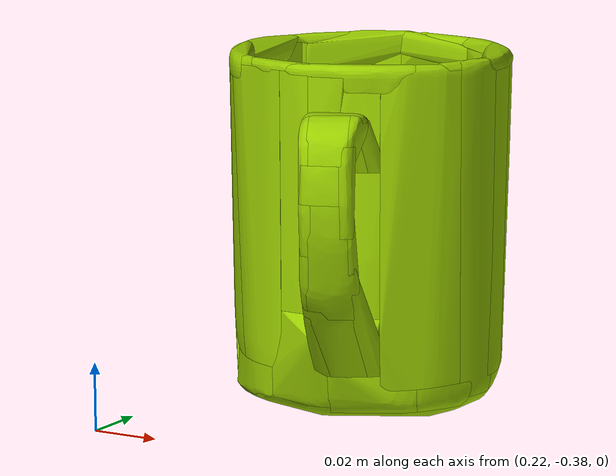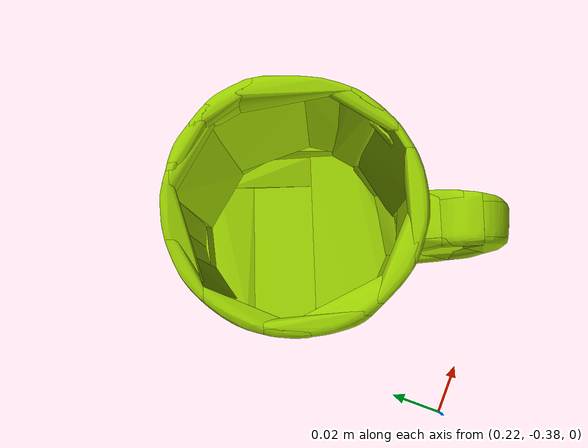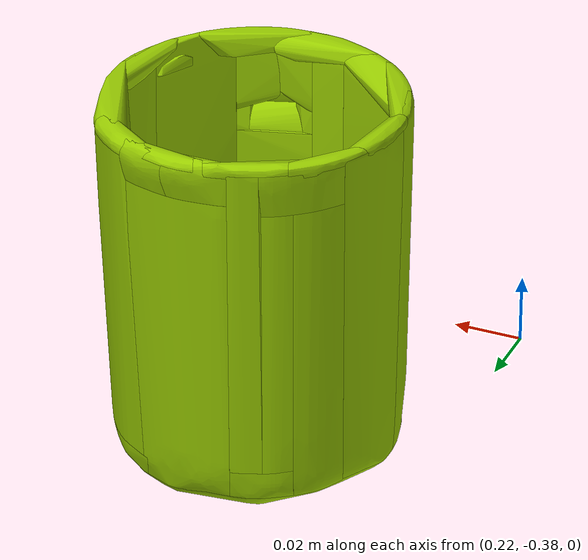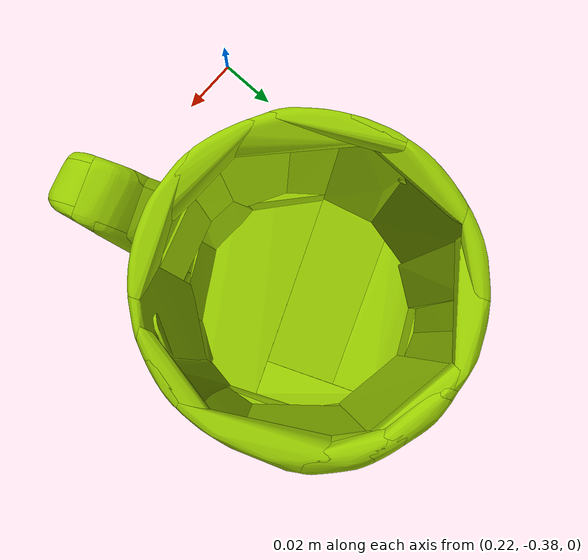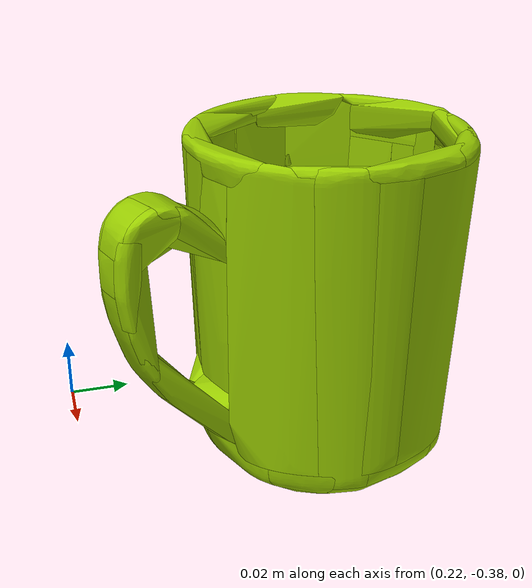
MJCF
<mujoco model="039_mug_1">
  <asset>
    <mesh name="039_mug_1_mesh" file="/home/yuan/codegen/codegen/datagen_clean/assets/objects/039_mug/1/039_mug_1.stl" scale="1 1 1" />
    <mesh name="039_mug_1_part_0" file="/home/yuan/codegen/codegen/datagen_clean/assets/objects/039_mug/1/decomposed/039_mug_1_decomposed_0.stl" scale="1 1 1" />
    <mesh name="039_mug_1_part_1" file="/home/yuan/codegen/codegen/datagen_clean/assets/objects/039_mug/1/decomposed/039_mug_1_decomposed_1.stl" scale="1 1 1" />
    <mesh name="039_mug_1_part_2" file="/home/yuan/codegen/codegen/datagen_clean/assets/objects/039_mug/1/decomposed/039_mug_1_decomposed_2.stl" scale="1 1 1" />
    <mesh name="039_mug_1_part_3" file="/home/yuan/codegen/codegen/datagen_clean/assets/objects/039_mug/1/decomposed/039_mug_1_decomposed_3.stl" scale="1 1 1" />
    <mesh name="039_mug_1_part_4" file="/home/yuan/codegen/codegen/datagen_clean/assets/objects/039_mug/1/decomposed/039_mug_1_decomposed_4.stl" scale="1 1 1" />
    <mesh name="039_mug_1_part_5" file="/home/yuan/codegen/codegen/datagen_clean/assets/objects/039_mug/1/decomposed/039_mug_1_decomposed_5.stl" scale="1 1 1" />
    <mesh name="039_mug_1_part_6" file="/home/yuan/codegen/codegen/datagen_clean/assets/objects/039_mug/1/decomposed/039_mug_1_decomposed_6.stl" scale="1 1 1" />
    <mesh name="039_mug_1_part_7" file="/home/yuan/codegen/codegen/datagen_clean/assets/objects/039_mug/1/decomposed/039_mug_1_decomposed_7.stl" scale="1 1 1" />
    <mesh name="039_mug_1_part_8" file="/home/yuan/codegen/codegen/datagen_clean/assets/objects/039_mug/1/decomposed/039_mug_1_decomposed_8.stl" scale="1 1 1" />
    <mesh name="039_mug_1_part_9" file="/home/yuan/codegen/codegen/datagen_clean/assets/objects/039_mug/1/decomposed/039_mug_1_decomposed_9.stl" scale="1 1 1" />
    <mesh name="039_mug_1_part_10" file="/home/yuan/codegen/codegen/datagen_clean/assets/objects/039_mug/1/decomposed/039_mug_1_decomposed_10.stl" scale="1 1 1" />
    <mesh name="039_mug_1_part_11" file="/home/yuan/codegen/codegen/datagen_clean/assets/objects/039_mug/1/decomposed/039_mug_1_decomposed_11.stl" scale="1 1 1" />
    <mesh name="039_mug_1_part_12" file="/home/yuan/codegen/codegen/datagen_clean/assets/objects/039_mug/1/decomposed/039_mug_1_decomposed_12.stl" scale="1 1 1" />
    <mesh name="039_mug_1_part_13" file="/home/yuan/codegen/codegen/datagen_clean/assets/objects/039_mug/1/decomposed/039_mug_1_decomposed_13.stl" scale="1 1 1" />
    <mesh name="039_mug_1_part_14" file="/home/yuan/codegen/codegen/datagen_clean/assets/objects/039_mug/1/decomposed/039_mug_1_decomposed_14.stl" scale="1 1 1" />
    <mesh name="039_mug_1_part_15" file="/home/yuan/codegen/codegen/datagen_clean/assets/objects/039_mug/1/decomposed/039_mug_1_decomposed_15.stl" scale="1 1 1" />
    <mesh name="039_mug_1_part_16" file="/home/yuan/codegen/codegen/datagen_clean/assets/objects/039_mug/1/decomposed/039_mug_1_decomposed_16.stl" scale="1 1 1" />
    <mesh name="039_mug_1_part_17" file="/home/yuan/codegen/codegen/datagen_clean/assets/objects/039_mug/1/decomposed/039_mug_1_decomposed_17.stl" scale="1 1 1" />
    <mesh name="039_mug_1_part_18" file="/home/yuan/codegen/codegen/datagen_clean/assets/objects/039_mug/1/decomposed/039_mug_1_decomposed_18.stl" scale="1 1 1" />
    <mesh name="039_mug_1_part_19" file="/home/yuan/codegen/codegen/datagen_clean/assets/objects/039_mug/1/decomposed/039_mug_1_decomposed_19.stl" scale="1 1 1" />
    <mesh name="039_mug_1_part_20" file="/home/yuan/codegen/codegen/datagen_clean/assets/objects/039_mug/1/decomposed/039_mug_1_decomposed_20.stl" scale="1 1 1" />
    <mesh name="039_mug_1_part_21" file="/home/yuan/codegen/codegen/datagen_clean/assets/objects/039_mug/1/decomposed/039_mug_1_decomposed_21.stl" scale="1 1 1" />
    <mesh name="039_mug_1_part_22" file="/home/yuan/codegen/codegen/datagen_clean/assets/objects/039_mug/1/decomposed/039_mug_1_decomposed_22.stl" scale="1 1 1" />
    <mesh name="039_mug_1_part_23" file="/home/yuan/codegen/codegen/datagen_clean/assets/objects/039_mug/1/decomposed/039_mug_1_decomposed_23.stl" scale="1 1 1" />
    <mesh name="039_mug_1_part_24" file="/home/yuan/codegen/codegen/datagen_clean/assets/objects/039_mug/1/decomposed/039_mug_1_decomposed_24.stl" scale="1 1 1" />
    <mesh name="039_mug_1_part_25" file="/home/yuan/codegen/codegen/datagen_clean/assets/objects/039_mug/1/decomposed/039_mug_1_decomposed_25.stl" scale="1 1 1" />
    <mesh name="039_mug_1_part_26" file="/home/yuan/codegen/codegen/datagen_clean/assets/objects/039_mug/1/decomposed/039_mug_1_decomposed_26.stl" scale="1 1 1" />
    <mesh name="039_mug_1_part_27" file="/home/yuan/codegen/codegen/datagen_clean/assets/objects/039_mug/1/decomposed/039_mug_1_decomposed_27.stl" scale="1 1 1" />
    <mesh name="039_mug_1_part_28" file="/home/yuan/codegen/codegen/datagen_clean/assets/objects/039_mug/1/decomposed/039_mug_1_decomposed_28.stl" scale="1 1 1" />
    <mesh name="039_mug_1_part_29" file="/home/yuan/codegen/codegen/datagen_clean/assets/objects/039_mug/1/decomposed/039_mug_1_decomposed_29.stl" scale="1 1 1" />
    <mesh name="039_mug_1_part_30" file="/home/yuan/codegen/codegen/datagen_clean/assets/objects/039_mug/1/decomposed/039_mug_1_decomposed_30.stl" scale="1 1 1" />
    <mesh name="039_mug_1_part_31" file="/home/yuan/codegen/codegen/datagen_clean/assets/objects/039_mug/1/decomposed/039_mug_1_decomposed_31.stl" scale="1 1 1" />
    <mesh name="039_mug_1_part_32" file="/home/yuan/codegen/codegen/datagen_clean/assets/objects/039_mug/1/decomposed/039_mug_1_decomposed_32.stl" scale="1 1 1" />
    <mesh name="039_mug_1_part_33" file="/home/yuan/codegen/codegen/datagen_clean/assets/objects/039_mug/1/decomposed/039_mug_1_decomposed_33.stl" scale="1 1 1" />
    <mesh name="039_mug_1_part_34" file="/home/yuan/codegen/codegen/datagen_clean/assets/objects/039_mug/1/decomposed/039_mug_1_decomposed_34.stl" scale="1 1 1" />
    <mesh name="039_mug_1_part_35" file="/home/yuan/codegen/codegen/datagen_clean/assets/objects/039_mug/1/decomposed/039_mug_1_decomposed_35.stl" scale="1 1 1" />
    <mesh name="039_mug_1_part_36" file="/home/yuan/codegen/codegen/datagen_clean/assets/objects/039_mug/1/decomposed/039_mug_1_decomposed_36.stl" scale="1 1 1" />
    <mesh name="039_mug_1_part_37" file="/home/yuan/codegen/codegen/datagen_clean/assets/objects/039_mug/1/decomposed/039_mug_1_decomposed_37.stl" scale="1 1 1" />
    <mesh name="039_mug_1_part_38" file="/home/yuan/codegen/codegen/datagen_clean/assets/objects/039_mug/1/decomposed/039_mug_1_decomposed_38.stl" scale="1 1 1" />
    <mesh name="039_mug_1_part_39" file="/home/yuan/codegen/codegen/datagen_clean/assets/objects/039_mug/1/decomposed/039_mug_1_decomposed_39.stl" scale="1 1 1" />
    <mesh name="039_mug_1_part_40" file="/home/yuan/codegen/codegen/datagen_clean/assets/objects/039_mug/1/decomposed/039_mug_1_decomposed_40.stl" scale="1 1 1" />
    <mesh name="039_mug_1_part_41" file="/home/yuan/codegen/codegen/datagen_clean/assets/objects/039_mug/1/decomposed/039_mug_1_decomposed_41.stl" scale="1 1 1" />
    <mesh name="039_mug_1_part_42" file="/home/yuan/codegen/codegen/datagen_clean/assets/objects/039_mug/1/decomposed/039_mug_1_decomposed_42.stl" scale="1 1 1" />
    <mesh name="039_mug_1_part_43" file="/home/yuan/codegen/codegen/datagen_clean/assets/objects/039_mug/1/decomposed/039_mug_1_decomposed_43.stl" scale="1 1 1" />
    <mesh name="039_mug_1_part_44" file="/home/yuan/codegen/codegen/datagen_clean/assets/objects/039_mug/1/decomposed/039_mug_1_decomposed_44.stl" scale="1 1 1" />
    <mesh name="039_mug_1_part_45" file="/home/yuan/codegen/codegen/datagen_clean/assets/objects/039_mug/1/decomposed/039_mug_1_decomposed_45.stl" scale="1 1 1" />
    <mesh name="039_mug_1_part_46" file="/home/yuan/codegen/codegen/datagen_clean/assets/objects/039_mug/1/decomposed/039_mug_1_decomposed_46.stl" scale="1 1 1" />
    <mesh name="039_mug_1_part_47" file="/home/yuan/codegen/codegen/datagen_clean/assets/objects/039_mug/1/decomposed/039_mug_1_decomposed_47.stl" scale="1 1 1" />
    <mesh name="039_mug_1_part_48" file="/home/yuan/codegen/codegen/datagen_clean/assets/objects/039_mug/1/decomposed/039_mug_1_decomposed_48.stl" scale="1 1 1" />
    <mesh name="039_mug_1_part_49" file="/home/yuan/codegen/codegen/datagen_clean/assets/objects/039_mug/1/decomposed/039_mug_1_decomposed_49.stl" scale="1 1 1" />
    <mesh name="039_mug_1_part_50" file="/home/yuan/codegen/codegen/datagen_clean/assets/objects/039_mug/1/decomposed/039_mug_1_decomposed_50.stl" scale="1 1 1" />
    <mesh name="039_mug_1_part_51" file="/home/yuan/codegen/codegen/datagen_clean/assets/objects/039_mug/1/decomposed/039_mug_1_decomposed_51.stl" scale="1 1 1" />
    <mesh name="039_mug_1_part_52" file="/home/yuan/codegen/codegen/datagen_clean/assets/objects/039_mug/1/decomposed/039_mug_1_decomposed_52.stl" scale="1 1 1" />
    <mesh name="039_mug_1_part_53" file="/home/yuan/codegen/codegen/datagen_clean/assets/objects/039_mug/1/decomposed/039_mug_1_decomposed_53.stl" scale="1 1 1" />
    <mesh name="039_mug_1_part_54" file="/home/yuan/codegen/codegen/datagen_clean/assets/objects/039_mug/1/decomposed/039_mug_1_decomposed_54.stl" scale="1 1 1" />
    <mesh name="039_mug_1_part_55" file="/home/yuan/codegen/codegen/datagen_clean/assets/objects/039_mug/1/decomposed/039_mug_1_decomposed_55.stl" scale="1 1 1" />
    <mesh name="039_mug_1_part_56" file="/home/yuan/codegen/codegen/datagen_clean/assets/objects/039_mug/1/decomposed/039_mug_1_decomposed_56.stl" scale="1 1 1" />
    <mesh name="039_mug_1_part_57" file="/home/yuan/codegen/codegen/datagen_clean/assets/objects/039_mug/1/decomposed/039_mug_1_decomposed_57.stl" scale="1 1 1" />
    <mesh name="039_mug_1_part_58" file="/home/yuan/codegen/codegen/datagen_clean/assets/objects/039_mug/1/decomposed/039_mug_1_decomposed_58.stl" scale="1 1 1" />
    <mesh name="039_mug_1_part_59" file="/home/yuan/codegen/codegen/datagen_clean/assets/objects/039_mug/1/decomposed/039_mug_1_decomposed_59.stl" scale="1 1 1" />
    <mesh name="039_mug_1_part_60" file="/home/yuan/codegen/codegen/datagen_clean/assets/objects/039_mug/1/decomposed/039_mug_1_decomposed_60.stl" scale="1 1 1" />
    <mesh name="039_mug_1_part_61" file="/home/yuan/codegen/codegen/datagen_clean/assets/objects/039_mug/1/decomposed/039_mug_1_decomposed_61.stl" scale="1 1 1" />
    <mesh name="039_mug_1_part_62" file="/home/yuan/codegen/codegen/datagen_clean/assets/objects/039_mug/1/decomposed/039_mug_1_decomposed_62.stl" scale="1 1 1" />
    <mesh name="039_mug_1_part_63" file="/home/yuan/codegen/codegen/datagen_clean/assets/objects/039_mug/1/decomposed/039_mug_1_decomposed_63.stl" scale="1 1 1" />
  </asset>
  <worldbody>
    <body name="039_mug_1" pos="0.27354347 -0.31641611 0.0" quat="0.55556990016481 0.0 0.0 0.8314701551588386">
      <freejoint name="039_mug_1_freejoint" /><geom name="039_mug_1_geom_0" type="mesh" mesh="039_mug_1_part_0" friction="10 5 5" condim="6" rgba="0.6 0.8 0.0 1" density="1000" />
      <geom name="039_mug_1_geom_1" type="mesh" mesh="039_mug_1_part_1" friction="10 5 5" condim="6" rgba="0.6 0.8 0.0 1" density="1000" />
      <geom name="039_mug_1_geom_2" type="mesh" mesh="039_mug_1_part_2" friction="10 5 5" condim="6" rgba="0.6 0.8 0.0 1" density="1000" />
      <geom name="039_mug_1_geom_3" type="mesh" mesh="039_mug_1_part_3" friction="10 5 5" condim="6" rgba="0.6 0.8 0.0 1" density="1000" />
      <geom name="039_mug_1_geom_4" type="mesh" mesh="039_mug_1_part_4" friction="10 5 5" condim="6" rgba="0.6 0.8 0.0 1" density="1000" />
      <geom name="039_mug_1_geom_5" type="mesh" mesh="039_mug_1_part_5" friction="10 5 5" condim="6" rgba="0.6 0.8 0.0 1" density="1000" />
      <geom name="039_mug_1_geom_6" type="mesh" mesh="039_mug_1_part_6" friction="10 5 5" condim="6" rgba="0.6 0.8 0.0 1" density="1000" />
      <geom name="039_mug_1_geom_7" type="mesh" mesh="039_mug_1_part_7" friction="10 5 5" condim="6" rgba="0.6 0.8 0.0 1" density="1000" />
      <geom name="039_mug_1_geom_8" type="mesh" mesh="039_mug_1_part_8" friction="10 5 5" condim="6" rgba="0.6 0.8 0.0 1" density="1000" />
      <geom name="039_mug_1_geom_9" type="mesh" mesh="039_mug_1_part_9" friction="10 5 5" condim="6" rgba="0.6 0.8 0.0 1" density="1000" />
      <geom name="039_mug_1_geom_10" type="mesh" mesh="039_mug_1_part_10" friction="10 5 5" condim="6" rgba="0.6 0.8 0.0 1" density="1000" />
      <geom name="039_mug_1_geom_11" type="mesh" mesh="039_mug_1_part_11" friction="10 5 5" condim="6" rgba="0.6 0.8 0.0 1" density="1000" />
      <geom name="039_mug_1_geom_12" type="mesh" mesh="039_mug_1_part_12" friction="10 5 5" condim="6" rgba="0.6 0.8 0.0 1" density="1000" />
      <geom name="039_mug_1_geom_13" type="mesh" mesh="039_mug_1_part_13" friction="10 5 5" condim="6" rgba="0.6 0.8 0.0 1" density="1000" />
      <geom name="039_mug_1_geom_14" type="mesh" mesh="039_mug_1_part_14" friction="10 5 5" condim="6" rgba="0.6 0.8 0.0 1" density="1000" />
      <geom name="039_mug_1_geom_15" type="mesh" mesh="039_mug_1_part_15" friction="10 5 5" condim="6" rgba="0.6 0.8 0.0 1" density="1000" />
      <geom name="039_mug_1_geom_16" type="mesh" mesh="039_mug_1_part_16" friction="10 5 5" condim="6" rgba="0.6 0.8 0.0 1" density="1000" />
      <geom name="039_mug_1_geom_17" type="mesh" mesh="039_mug_1_part_17" friction="10 5 5" condim="6" rgba="0.6 0.8 0.0 1" density="1000" />
      <geom name="039_mug_1_geom_18" type="mesh" mesh="039_mug_1_part_18" friction="10 5 5" condim="6" rgba="0.6 0.8 0.0 1" density="1000" />
      <geom name="039_mug_1_geom_19" type="mesh" mesh="039_mug_1_part_19" friction="10 5 5" condim="6" rgba="0.6 0.8 0.0 1" density="1000" />
      <geom name="039_mug_1_geom_20" type="mesh" mesh="039_mug_1_part_20" friction="10 5 5" condim="6" rgba="0.6 0.8 0.0 1" density="1000" />
      <geom name="039_mug_1_geom_21" type="mesh" mesh="039_mug_1_part_21" friction="10 5 5" condim="6" rgba="0.6 0.8 0.0 1" density="1000" />
      <geom name="039_mug_1_geom_22" type="mesh" mesh="039_mug_1_part_22" friction="10 5 5" condim="6" rgba="0.6 0.8 0.0 1" density="1000" />
      <geom name="039_mug_1_geom_23" type="mesh" mesh="039_mug_1_part_23" friction="10 5 5" condim="6" rgba="0.6 0.8 0.0 1" density="1000" />
      <geom name="039_mug_1_geom_24" type="mesh" mesh="039_mug_1_part_24" friction="10 5 5" condim="6" rgba="0.6 0.8 0.0 1" density="1000" />
      <geom name="039_mug_1_geom_25" type="mesh" mesh="039_mug_1_part_25" friction="10 5 5" condim="6" rgba="0.6 0.8 0.0 1" density="1000" />
      <geom name="039_mug_1_geom_26" type="mesh" mesh="039_mug_1_part_26" friction="10 5 5" condim="6" rgba="0.6 0.8 0.0 1" density="1000" />
      <geom name="039_mug_1_geom_27" type="mesh" mesh="039_mug_1_part_27" friction="10 5 5" condim="6" rgba="0.6 0.8 0.0 1" density="1000" />
      <geom name="039_mug_1_geom_28" type="mesh" mesh="039_mug_1_part_28" friction="10 5 5" condim="6" rgba="0.6 0.8 0.0 1" density="1000" />
      <geom name="039_mug_1_geom_29" type="mesh" mesh="039_mug_1_part_29" friction="10 5 5" condim="6" rgba="0.6 0.8 0.0 1" density="1000" />
      <geom name="039_mug_1_geom_30" type="mesh" mesh="039_mug_1_part_30" friction="10 5 5" condim="6" rgba="0.6 0.8 0.0 1" density="1000" />
      <geom name="039_mug_1_geom_31" type="mesh" mesh="039_mug_1_part_31" friction="10 5 5" condim="6" rgba="0.6 0.8 0.0 1" density="1000" />
      <geom name="039_mug_1_geom_32" type="mesh" mesh="039_mug_1_part_32" friction="10 5 5" condim="6" rgba="0.6 0.8 0.0 1" density="1000" />
      <geom name="039_mug_1_geom_33" type="mesh" mesh="039_mug_1_part_33" friction="10 5 5" condim="6" rgba="0.6 0.8 0.0 1" density="1000" />
      <geom name="039_mug_1_geom_34" type="mesh" mesh="039_mug_1_part_34" friction="10 5 5" condim="6" rgba="0.6 0.8 0.0 1" density="1000" />
      <geom name="039_mug_1_geom_35" type="mesh" mesh="039_mug_1_part_35" friction="10 5 5" condim="6" rgba="0.6 0.8 0.0 1" density="1000" />
      <geom name="039_mug_1_geom_36" type="mesh" mesh="039_mug_1_part_36" friction="10 5 5" condim="6" rgba="0.6 0.8 0.0 1" density="1000" />
      <geom name="039_mug_1_geom_37" type="mesh" mesh="039_mug_1_part_37" friction="10 5 5" condim="6" rgba="0.6 0.8 0.0 1" density="1000" />
      <geom name="039_mug_1_geom_38" type="mesh" mesh="039_mug_1_part_38" friction="10 5 5" condim="6" rgba="0.6 0.8 0.0 1" density="1000" />
      <geom name="039_mug_1_geom_39" type="mesh" mesh="039_mug_1_part_39" friction="10 5 5" condim="6" rgba="0.6 0.8 0.0 1" density="1000" />
      <geom name="039_mug_1_geom_40" type="mesh" mesh="039_mug_1_part_40" friction="10 5 5" condim="6" rgba="0.6 0.8 0.0 1" density="1000" />
      <geom name="039_mug_1_geom_41" type="mesh" mesh="039_mug_1_part_41" friction="10 5 5" condim="6" rgba="0.6 0.8 0.0 1" density="1000" />
      <geom name="039_mug_1_geom_42" type="mesh" mesh="039_mug_1_part_42" friction="10 5 5" condim="6" rgba="0.6 0.8 0.0 1" density="1000" />
      <geom name="039_mug_1_geom_43" type="mesh" mesh="039_mug_1_part_43" friction="10 5 5" condim="6" rgba="0.6 0.8 0.0 1" density="1000" />
      <geom name="039_mug_1_geom_44" type="mesh" mesh="039_mug_1_part_44" friction="10 5 5" condim="6" rgba="0.6 0.8 0.0 1" density="1000" />
      <geom name="039_mug_1_geom_45" type="mesh" mesh="039_mug_1_part_45" friction="10 5 5" condim="6" rgba="0.6 0.8 0.0 1" density="1000" />
      <geom name="039_mug_1_geom_46" type="mesh" mesh="039_mug_1_part_46" friction="10 5 5" condim="6" rgba="0.6 0.8 0.0 1" density="1000" />
      <geom name="039_mug_1_geom_47" type="mesh" mesh="039_mug_1_part_47" friction="10 5 5" condim="6" rgba="0.6 0.8 0.0 1" density="1000" />
      <geom name="039_mug_1_geom_48" type="mesh" mesh="039_mug_1_part_48" friction="10 5 5" condim="6" rgba="0.6 0.8 0.0 1" density="1000" />
      <geom name="039_mug_1_geom_49" type="mesh" mesh="039_mug_1_part_49" friction="10 5 5" condim="6" rgba="0.6 0.8 0.0 1" density="1000" />
      <geom name="039_mug_1_geom_50" type="mesh" mesh="039_mug_1_part_50" friction="10 5 5" condim="6" rgba="0.6 0.8 0.0 1" density="1000" />
      <geom name="039_mug_1_geom_51" type="mesh" mesh="039_mug_1_part_51" friction="10 5 5" condim="6" rgba="0.6 0.8 0.0 1" density="1000" />
      <geom name="039_mug_1_geom_52" type="mesh" mesh="039_mug_1_part_52" friction="10 5 5" condim="6" rgba="0.6 0.8 0.0 1" density="1000" />
      <geom name="039_mug_1_geom_53" type="mesh" mesh="039_mug_1_part_53" friction="10 5 5" condim="6" rgba="0.6 0.8 0.0 1" density="1000" />
      <geom name="039_mug_1_geom_54" type="mesh" mesh="039_mug_1_part_54" friction="10 5 5" condim="6" rgba="0.6 0.8 0.0 1" density="1000" />
      <geom name="039_mug_1_geom_55" type="mesh" mesh="039_mug_1_part_55" friction="10 5 5" condim="6" rgba="0.6 0.8 0.0 1" density="1000" />
      <geom name="039_mug_1_geom_56" type="mesh" mesh="039_mug_1_part_56" friction="10 5 5" condim="6" rgba="0.6 0.8 0.0 1" density="1000" />
      <geom name="039_mug_1_geom_57" type="mesh" mesh="039_mug_1_part_57" friction="10 5 5" condim="6" rgba="0.6 0.8 0.0 1" density="1000" />
      <geom name="039_mug_1_geom_58" type="mesh" mesh="039_mug_1_part_58" friction="10 5 5" condim="6" rgba="0.6 0.8 0.0 1" density="1000" />
      <geom name="039_mug_1_geom_59" type="mesh" mesh="039_mug_1_part_59" friction="10 5 5" condim="6" rgba="0.6 0.8 0.0 1" density="1000" />
      <geom name="039_mug_1_geom_60" type="mesh" mesh="039_mug_1_part_60" friction="10 5 5" condim="6" rgba="0.6 0.8 0.0 1" density="1000" />
      <geom name="039_mug_1_geom_61" type="mesh" mesh="039_mug_1_part_61" friction="10 5 5" condim="6" rgba="0.6 0.8 0.0 1" density="1000" />
      <geom name="039_mug_1_geom_62" type="mesh" mesh="039_mug_1_part_62" friction="10 5 5" condim="6" rgba="0.6 0.8 0.0 1" density="1000" />
      <geom name="039_mug_1_geom_63" type="mesh" mesh="039_mug_1_part_63" friction="10 5 5" condim="6" rgba="0.6 0.8 0.0 1" density="1000" />
    <site name="039_mug_1_kp_0" pos="-0.040512 0.002279 0.092756" size="0.01" rgba="0 0 0 0" type="sphere" /><site name="039_mug_1_kp_1" pos="-0.055772 0.009153 0.071149" size="0.01" rgba="0 0 0 0" type="sphere" /><site name="039_mug_1_kp_2" pos="-0.036864 0.003782 0.028346" size="0.01" rgba="0 0 0 0" type="sphere" /><site name="039_mug_1_kp_3" pos="0.014606 0.039688 0.104429" size="0.01" rgba="0 0 0 0" type="sphere" /><site name="039_mug_1_kp_4" pos="0.053334 -0.004848 0.104266" size="0.01" rgba="0 0 0 0" type="sphere" /><site name="039_mug_1_kp_5" pos="0.011704 -0.040187 0.102866" size="0.01" rgba="0 0 0 0" type="sphere" /><site name="039_mug_1_kp_6" pos="-0.026093 0.003719 0.103880" size="0.01" rgba="0 0 0 0" type="sphere" /><site name="039_mug_1_kp_7" pos="0.009350 0.039612 0.075339" size="0.01" rgba="0 0 0 0" type="sphere" /></body>
  </worldbody>
</mujoco>
